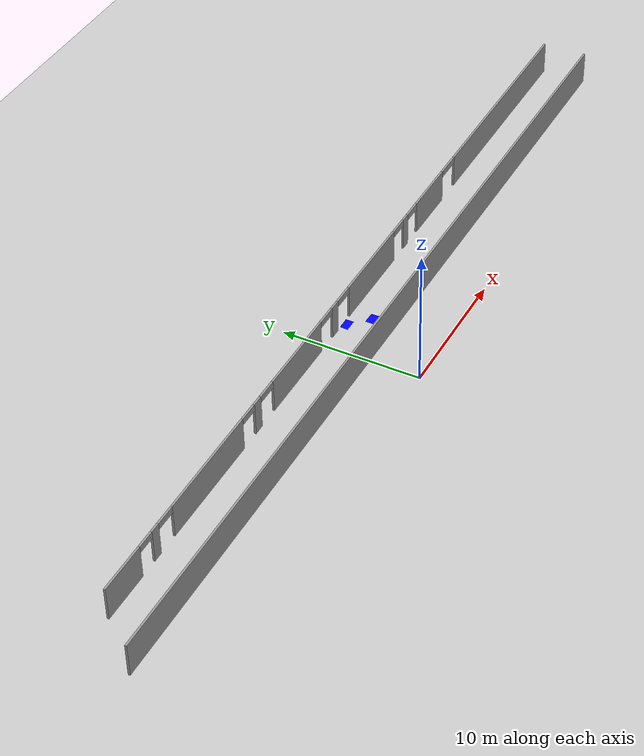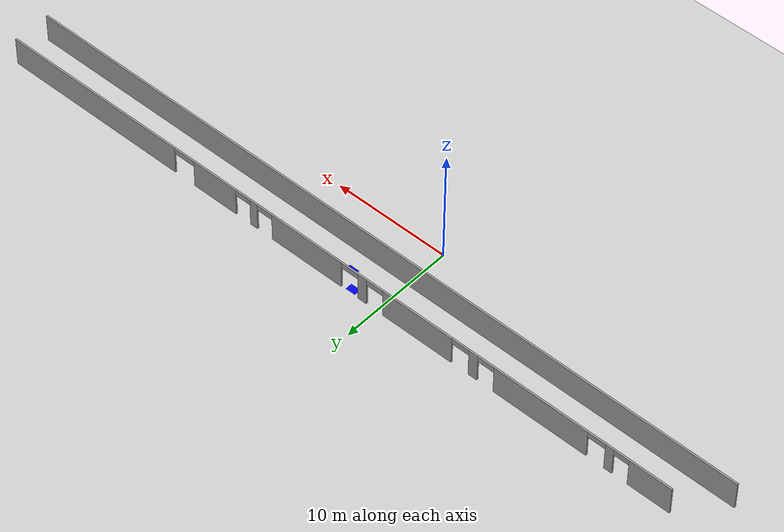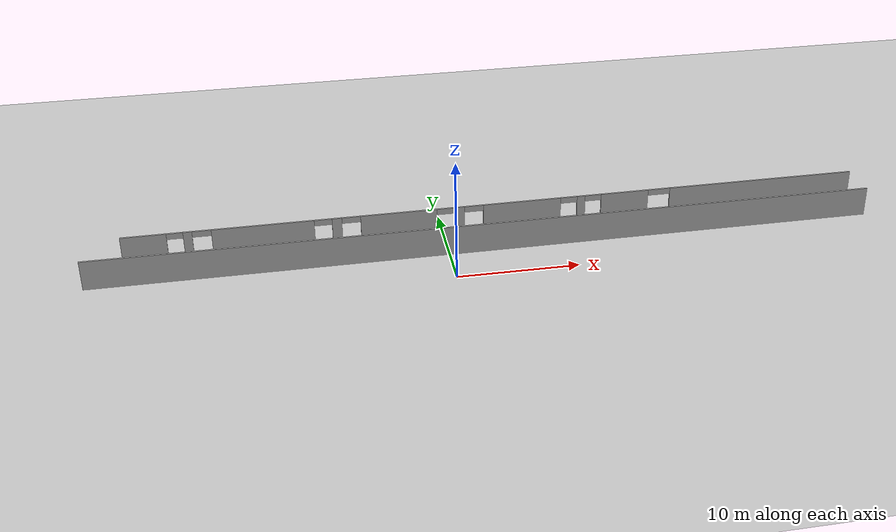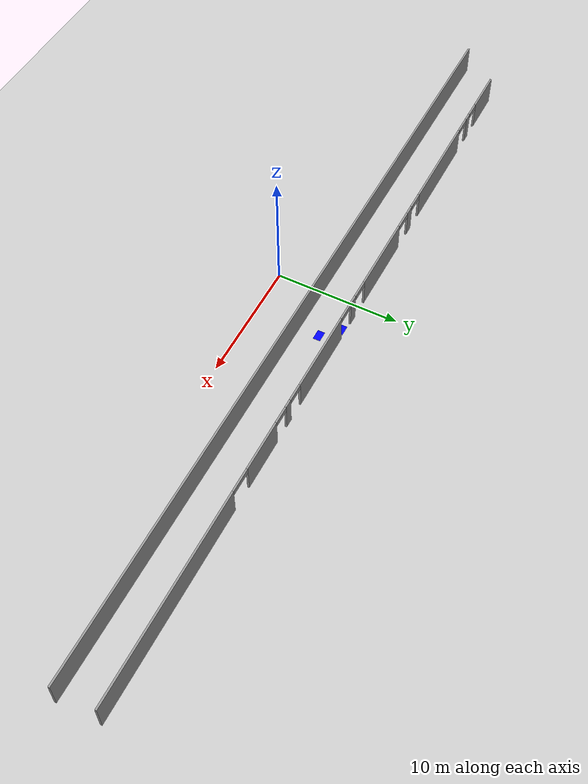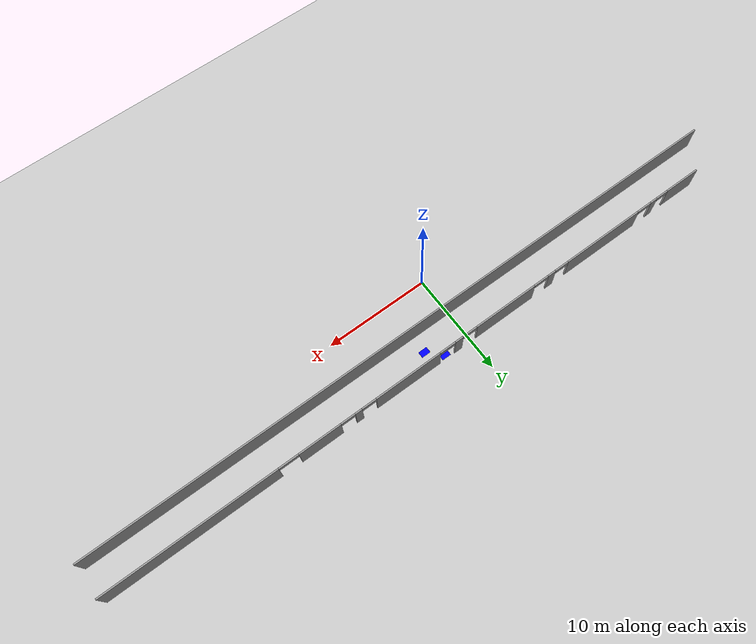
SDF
<sdf version="1.6">
 <world name="default">
  <model name="ground_plane">
   <pose>0 0 0.001 0 -0 0</pose>
   <static>1</static>
   <link name="link">
    <collision name="collision">
     <geometry><plane><normal>0 0 1</normal><size>100 100</size></plane></geometry>
     <surface><friction><ode><mu>100</mu><mu2>50</mu2></ode></friction></surface>
    </collision>
    <visual name="visual">
     <cast_shadows>0</cast_shadows>
     <geometry><plane><normal>0 0 1</normal><size>100 100</size></plane></geometry>
     <material>
      <script><uri>file://media/materials/scripts/gazebo.material</uri><name>Gazebo/Grey</name></script>
     </material>
    </visual>
   </link>
  </model>
  <model name="intersection_54">
   <link name="link">
    <pose>0 0 0.001 0 -0 0</pose>
    <inertial>
     <mass>0.0352517</mass>
     <inertia>
      <ixx>0.000997067</ixx>
      <ixy>0</ixy>
      <ixz>0</ixz>
      <iyy>0.00220147</iyy>
      <iyz>0</iyz>
      <izz>0.0031692</izz>
     </inertia>
     <pose>0 0 0.001 0 -0 0</pose>
    </inertial>
    <visual name="visual">
     <geometry><box><size>0.862743 0.578289 1e-06</size></box></geometry>
     <material>
      <script><name>Gazebo/Grey</name><uri>file://media/materials/scripts/gazebo.material</uri></script>
      <ambient>0 0 1 1</ambient>
      <diffuse>0 0 1 1</diffuse>
      <specular>0 0 1 1</specular>
      <emissive>0 0 1 1</emissive>
      <shader type="vertex"><normal_map>__default__</normal_map></shader>
     </material>
     <pose>0 0 0.001 0 -0 0</pose>
    </visual>
    <collision name="collision">
     <pose>0 0 0.001 0 -0 0</pose>
     <geometry><box><size>0.862743 0.578289 0.000477</size></box></geometry>
     <surface>
      <friction>
       <ode><mu>1</mu><mu2>1</mu2><fdir1>0 0 0</fdir1><slip1>0</slip1><slip2>0</slip2></ode>
       <torsional>
        <coefficient>1</coefficient>
        <patch_radius>0</patch_radius>
        <surface_radius>0</surface_radius>
        <use_patch_radius>1</use_patch_radius>
        <ode><slip>0</slip></ode>
       </torsional>
      </friction>
      <bounce><restitution_coefficient>0</restitution_coefficient><threshold>1e+06</threshold></bounce>
      <contact>
       <collide_without_contact>0</collide_without_contact>
       <collide_without_contact_bitmask>1</collide_without_contact_bitmask>
       <collide_bitmask>1</collide_bitmask>
       <ode>
        <soft_cfm>0</soft_cfm>
        <soft_erp>0.2</soft_erp>
        <kp>1e+13</kp>
        <kd>1</kd>
        <max_vel>0.01</max_vel>
        <min_depth>0</min_depth>
       </ode>
       <bullet>
        <split_impulse>1</split_impulse>
        <split_impulse_penetration_threshold>-0.01</split_impulse_penetration_threshold>
        <soft_cfm>0</soft_cfm>
        <soft_erp>0.2</soft_erp>
        <kp>1e+13</kp>
        <kd>1</kd>
       </bullet>
      </contact>
     </surface>
    </collision>
   </link>
   <static>1</static>
   <pose>3.85756 5.39238 0 0 -0 0</pose>
  </model>
  <model name="Se1_cut">
   <pose>3.62364 13.9276 0 0 -0 0</pose>
   <link name="Wall_10">
    <pose>1.36862 -6.975 0 0 -0 0</pose>
    <visual name="Wall_10_Visual_0">
     <pose>-29.3076 0 1.25 0 -0 0</pose>
     <geometry><box><size>3.63484 0.15 2.5</size></box></geometry>
     <material>
      <script><uri>file://media/materials/scripts/gazebo.material</uri><name>Gazebo/Grey</name></script>
      <ambient>1 1 1 1</ambient>
     </material>
    </visual>
    <collision name="Wall_10_Collision_0">
     <geometry><box><size>3.63484 0.15 2.5</size></box></geometry>
     <pose>-29.3076 0 1.25 0 -0 0</pose>
    </collision>
    <visual name="Wall_10_Visual_1">
     <pose>-25.817 0 1.25 0 -0 0</pose>
     <geometry><box><size>0.713595 0.15 2.5</size></box></geometry>
     <material>
      <script><uri>file://media/materials/scripts/gazebo.material</uri><name>Gazebo/Grey</name></script>
      <ambient>1 1 1 1</ambient>
     </material>
    </visual>
    <collision name="Wall_10_Collision_1">
     <geometry><box><size>0.713595 0.15 2.5</size></box></geometry>
     <pose>-25.817 0 1.25 0 -0 0</pose>
    </collision>
    <visual name="Wall_10_Visual_2">
     <pose>-19.8 0 1.25 0 -0 0</pose>
     <geometry><box><size>8.27129 0.15 2.5</size></box></geometry>
     <material>
      <script><uri>file://media/materials/scripts/gazebo.material</uri><name>Gazebo/Grey</name></script>
      <ambient>1 1 1 1</ambient>
     </material>
    </visual>
    <collision name="Wall_10_Collision_2">
     <geometry><box><size>8.27129 0.15 2.5</size></box></geometry>
     <pose>-19.8 0 1.25 0 -0 0</pose>
    </collision>
    <visual name="Wall_10_Visual_3">
     <pose>-13.8092 0 1.25 0 -0 0</pose>
     <geometry><box><size>0.8001 0.15 2.5</size></box></geometry>
     <material>
      <script><uri>file://media/materials/scripts/gazebo.material</uri><name>Gazebo/Grey</name></script>
      <ambient>1 1 1 1</ambient>
     </material>
    </visual>
    <collision name="Wall_10_Collision_3">
     <geometry><box><size>0.8001 0.15 2.5</size></box></geometry>
     <pose>-13.8092 0 1.25 0 -0 0</pose>
    </collision>
    <visual name="Wall_10_Visual_4">
     <pose>-8.68578 0 1.25 0 -0 0</pose>
     <geometry><box><size>6.35145 0.15 2.5</size></box></geometry>
     <material>
      <script><uri>file://media/materials/scripts/gazebo.material</uri><name>Gazebo/Grey</name></script>
      <ambient>1 1 1 1</ambient>
     </material>
    </visual>
    <collision name="Wall_10_Collision_4">
     <geometry><box><size>6.35145 0.15 2.5</size></box></geometry>
     <pose>-8.68578 0 1.25 0 -0 0</pose>
    </collision>
    <visual name="Wall_10_Visual_5">
     <pose>-3.58549 0 1.25 0 -0 0</pose>
     <geometry><box><size>0.8001 0.15 2.5</size></box></geometry>
     <material>
      <script><uri>file://media/materials/scripts/gazebo.material</uri><name>Gazebo/Grey</name></script>
      <ambient>1 1 1 1</ambient>
     </material>
    </visual>
    <collision name="Wall_10_Collision_5">
     <geometry><box><size>0.8001 0.15 2.5</size></box></geometry>
     <pose>-3.58549 0 1.25 0 -0 0</pose>
    </collision>
    <visual name="Wall_10_Visual_6">
     <pose>1.72877 0 1.25 0 -0 0</pose>
     <geometry><box><size>6.64058 0.15 2.5</size></box></geometry>
     <material>
      <script><uri>file://media/materials/scripts/gazebo.material</uri><name>Gazebo/Grey</name></script>
      <ambient>1 1 1 1</ambient>
     </material>
    </visual>
    <collision name="Wall_10_Collision_6">
     <geometry><box><size>6.64058 0.15 2.5</size></box></geometry>
     <pose>1.72877 0 1.25 0 -0 0</pose>
    </collision>
    <visual name="Wall_10_Visual_7">
     <pose>6.82907 0 1.25 0 -0 0</pose>
     <geometry><box><size>0.696012 0.15 2.5</size></box></geometry>
     <material>
      <script><uri>file://media/materials/scripts/gazebo.material</uri><name>Gazebo/Grey</name></script>
      <ambient>1 1 1 1</ambient>
     </material>
    </visual>
    <collision name="Wall_10_Collision_7">
     <geometry><box><size>0.696012 0.15 2.5</size></box></geometry>
     <pose>6.82907 0 1.25 0 -0 0</pose>
    </collision>
    <visual name="Wall_10_Visual_8">
     <pose>10.6539 0 1.25 0 -0 0</pose>
     <geometry><box><size>4.13586 0.15 2.5</size></box></geometry>
     <material>
      <script><uri>file://media/materials/scripts/gazebo.material</uri><name>Gazebo/Grey</name></script>
      <ambient>1 1 1 1</ambient>
     </material>
    </visual>
    <collision name="Wall_10_Collision_8">
     <geometry><box><size>4.13586 0.15 2.5</size></box></geometry>
     <pose>10.6539 0 1.25 0 -0 0</pose>
    </collision>
    <visual name="Wall_10_Visual_9">
     <pose>22.8921 0 1.25 0 -0 0</pose>
     <geometry><box><size>16.4658 0.15 2.5</size></box></geometry>
     <material>
      <script><uri>file://media/materials/scripts/gazebo.material</uri><name>Gazebo/Grey</name></script>
      <ambient>1 1 1 1</ambient>
     </material>
    </visual>
    <collision name="Wall_10_Collision_9">
     <geometry><box><size>16.4658 0.15 2.5</size></box></geometry>
     <pose>22.8921 0 1.25 0 -0 0</pose>
    </collision>
    <visual name="Wall_10_Visual_10">
     <pose>-26.832 0 2.25 0 -0 0</pose>
     <geometry><box><size>1.31635 0.15 0.5</size></box></geometry>
     <material>
      <script><uri>file://media/materials/scripts/gazebo.material</uri><name>Gazebo/Grey</name></script>
      <ambient>1 1 1 1</ambient>
     </material>
    </visual>
    <collision name="Wall_10_Collision_10">
     <geometry><box><size>1.31635 0.15 0.5</size></box></geometry>
     <pose>-26.832 0 2.25 0 -0 0</pose>
    </collision>
    <visual name="Wall_10_Visual_11">
     <pose>-24.6979 0 2.25 0 -0 0</pose>
     <geometry><box><size>1.52453 0.15 0.5</size></box></geometry>
     <material>
      <script><uri>file://media/materials/scripts/gazebo.material</uri><name>Gazebo/Grey</name></script>
      <ambient>1 1 1 1</ambient>
     </material>
    </visual>
    <collision name="Wall_10_Collision_11">
     <geometry><box><size>1.52453 0.15 0.5</size></box></geometry>
     <pose>-24.6979 0 2.25 0 -0 0</pose>
    </collision>
    <visual name="Wall_10_Visual_12">
     <pose>-14.9368 0 2.25 0 -0 0</pose>
     <geometry><box><size>1.45514 0.15 0.5</size></box></geometry>
     <material>
      <script><uri>file://media/materials/scripts/gazebo.material</uri><name>Gazebo/Grey</name></script>
      <ambient>1 1 1 1</ambient>
     </material>
    </visual>
    <collision name="Wall_10_Collision_12">
     <geometry><box><size>1.45514 0.15 0.5</size></box></geometry>
     <pose>-14.9368 0 2.25 0 -0 0</pose>
    </collision>
    <visual name="Wall_10_Visual_13">
     <pose>-12.6353 0 2.25 0 -0 0</pose>
     <geometry><box><size>1.54766 0.15 0.5</size></box></geometry>
     <material>
      <script><uri>file://media/materials/scripts/gazebo.material</uri><name>Gazebo/Grey</name></script>
      <ambient>1 1 1 1</ambient>
     </material>
    </visual>
    <collision name="Wall_10_Collision_13">
     <geometry><box><size>1.54766 0.15 0.5</size></box></geometry>
     <pose>-12.6353 0 2.25 0 -0 0</pose>
    </collision>
    <visual name="Wall_10_Visual_14">
     <pose>-4.7478 0 2.25 0 -0 0</pose>
     <geometry><box><size>1.52453 0.15 0.5</size></box></geometry>
     <material>
      <script><uri>file://media/materials/scripts/gazebo.material</uri><name>Gazebo/Grey</name></script>
      <ambient>1 1 1 1</ambient>
     </material>
    </visual>
    <collision name="Wall_10_Collision_14">
     <geometry><box><size>1.52453 0.15 0.5</size></box></geometry>
     <pose>-4.7478 0 2.25 0 -0 0</pose>
    </collision>
    <visual name="Wall_10_Visual_15">
     <pose>-2.38848 0 2.25 0 -0 0</pose>
     <geometry><box><size>1.59392 0.15 0.5</size></box></geometry>
     <material>
      <script><uri>file://media/materials/scripts/gazebo.material</uri><name>Gazebo/Grey</name></script>
      <ambient>1 1 1 1</ambient>
     </material>
    </visual>
    <collision name="Wall_10_Collision_15">
     <geometry><box><size>1.59392 0.15 0.5</size></box></geometry>
     <pose>-2.38848 0 2.25 0 -0 0</pose>
    </collision>
    <visual name="Wall_10_Visual_16">
     <pose>5.76506 0 2.25 0 -0 0</pose>
     <geometry><box><size>1.432 0.15 0.5</size></box></geometry>
     <material>
      <script><uri>file://media/materials/scripts/gazebo.material</uri><name>Gazebo/Grey</name></script>
      <ambient>1 1 1 1</ambient>
     </material>
    </visual>
    <collision name="Wall_10_Collision_16">
     <geometry><box><size>1.432 0.15 0.5</size></box></geometry>
     <pose>5.76506 0 2.25 0 -0 0</pose>
    </collision>
    <visual name="Wall_10_Visual_17">
     <pose>7.88151 0 2.25 0 -0 0</pose>
     <geometry><box><size>1.40887 0.15 0.5</size></box></geometry>
     <material>
      <script><uri>file://media/materials/scripts/gazebo.material</uri><name>Gazebo/Grey</name></script>
      <ambient>1 1 1 1</ambient>
     </material>
    </visual>
    <collision name="Wall_10_Collision_17">
     <geometry><box><size>1.40887 0.15 0.5</size></box></geometry>
     <pose>7.88151 0 2.25 0 -0 0</pose>
    </collision>
    <visual name="Wall_10_Visual_18">
     <pose>13.6905 0 2.25 0 -0 0</pose>
     <geometry><box><size>1.93741 0.15 0.5</size></box></geometry>
     <material>
      <script><uri>file://media/materials/scripts/gazebo.material</uri><name>Gazebo/Grey</name></script>
      <ambient>1 1 1 1</ambient>
     </material>
    </visual>
    <collision name="Wall_10_Collision_18">
     <geometry><box><size>1.93741 0.15 0.5</size></box></geometry>
     <pose>13.6905 0 2.25 0 -0 0</pose>
    </collision>
   </link>
   <link name="Wall_3">
    <collision name="Wall_3_Collision">
     <geometry><box><size>65.25 0.15 2.5</size></box></geometry>
     <pose>0 0 1.25 0 -0 0</pose>
    </collision>
    <visual name="Wall_3_Visual">
     <pose>0 0 1.25 0 -0 0</pose>
     <geometry><box><size>65.25 0.15 2.5</size></box></geometry>
     <material>
      <script><uri>file://media/materials/scripts/gazebo.material</uri><name>Gazebo/Grey</name></script>
      <ambient>1 1 1 1</ambient>
     </material>
    </visual>
    <pose>-0.031375 -10.225 0 0 -0 0</pose>
   </link>
   <static>1</static>
  </model>
  <model name="intersection_64">
   <link name="link">
    <pose>0 0 0.001 0 -0 0</pose>
    <inertial>
     <mass>0.0352517</mass>
     <inertia>
      <ixx>0.000997067</ixx>
      <ixy>0</ixy>
      <ixz>0</ixz>
      <iyy>0.00220147</iyy>
      <iyz>0</iyz>
      <izz>0.0031692</izz>
     </inertia>
     <pose>0 0 0.001 0 -0 0</pose>
    </inertial>
    <visual name="visual">
     <geometry><box><size>0.862743 0.578289 1e-06</size></box></geometry>
     <material>
      <script><name>Gazebo/Grey</name><uri>file://media/materials/scripts/gazebo.material</uri></script>
      <ambient>0 0 1 1</ambient>
      <diffuse>0 0 1 1</diffuse>
      <specular>0 0 1 1</specular>
      <emissive>0 0 1 1</emissive>
      <shader type="vertex"><normal_map>__default__</normal_map></shader>
     </material>
     <pose>0 0 0.001 0 -0 0</pose>
    </visual>
    <collision name="collision">
     <pose>0 0 0.001 0 -0 0</pose>
     <geometry><box><size>0.862743 0.578289 0.000477</size></box></geometry>
     <surface>
      <friction>
       <ode><mu>1</mu><mu2>1</mu2><fdir1>0 0 0</fdir1><slip1>0</slip1><slip2>0</slip2></ode>
       <torsional>
        <coefficient>1</coefficient>
        <patch_radius>0</patch_radius>
        <surface_radius>0</surface_radius>
        <use_patch_radius>1</use_patch_radius>
        <ode><slip>0</slip></ode>
       </torsional>
      </friction>
      <bounce><restitution_coefficient>0</restitution_coefficient><threshold>1e+06</threshold></bounce>
      <contact>
       <collide_without_contact>0</collide_without_contact>
       <collide_without_contact_bitmask>1</collide_without_contact_bitmask>
       <collide_bitmask>1</collide_bitmask>
       <ode>
        <soft_cfm>0</soft_cfm>
        <soft_erp>0.2</soft_erp>
        <kp>1e+13</kp>
        <kd>1</kd>
        <max_vel>0.01</max_vel>
        <min_depth>0</min_depth>
       </ode>
       <bullet>
        <split_impulse>1</split_impulse>
        <split_impulse_penetration_threshold>-0.01</split_impulse_penetration_threshold>
        <soft_cfm>0</soft_cfm>
        <soft_erp>0.2</soft_erp>
        <kp>1e+13</kp>
        <kd>1</kd>
       </bullet>
      </contact>
     </surface>
    </collision>
   </link>
   <static>1</static>
   <pose>2.58424 6.64608 0 0 -0 0</pose>
  </model>
 </world>
</sdf>
